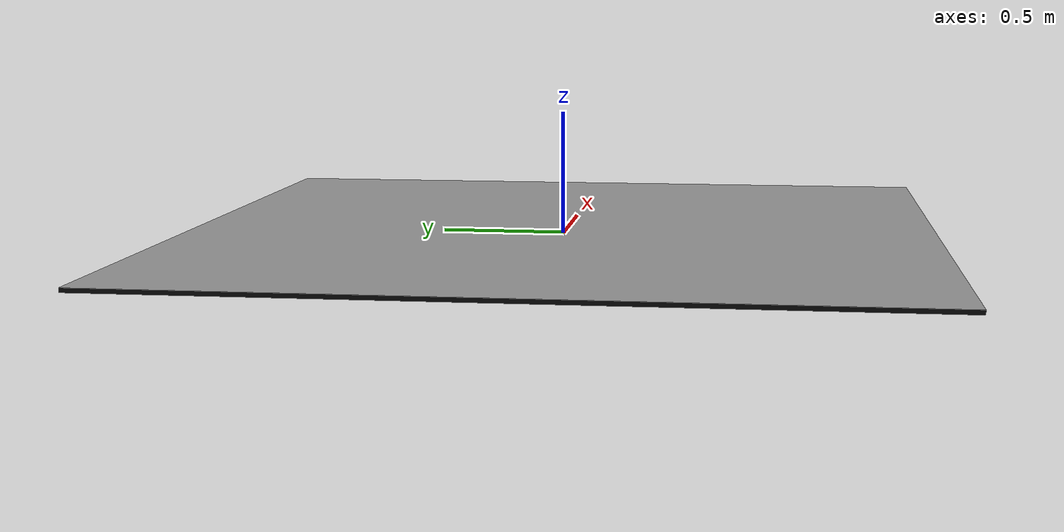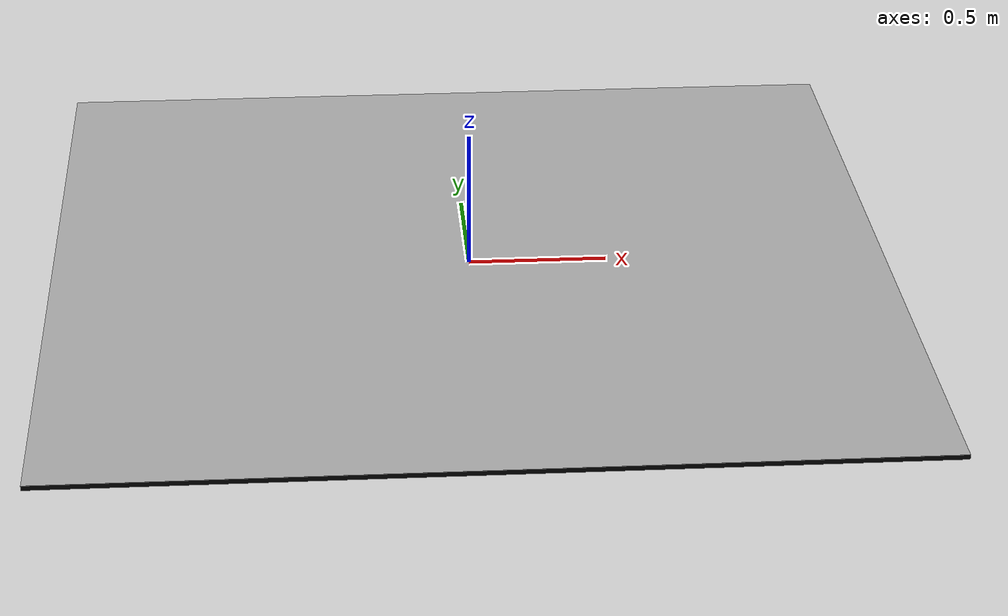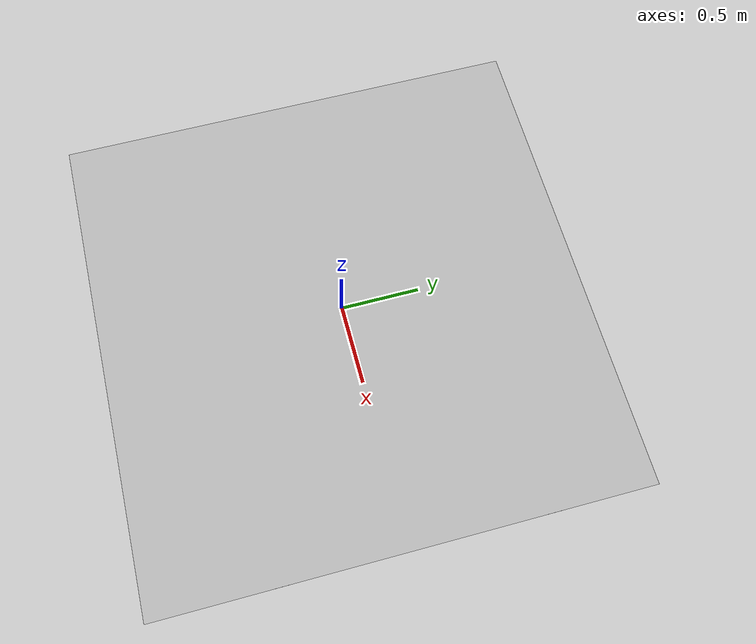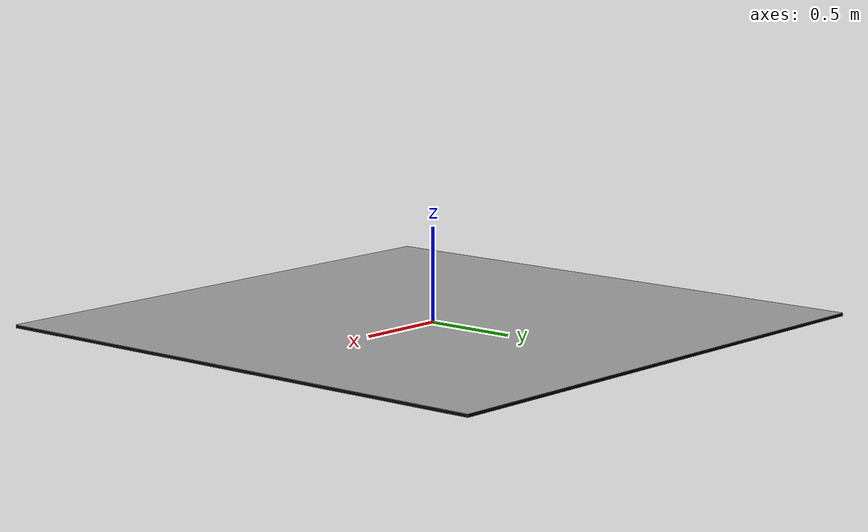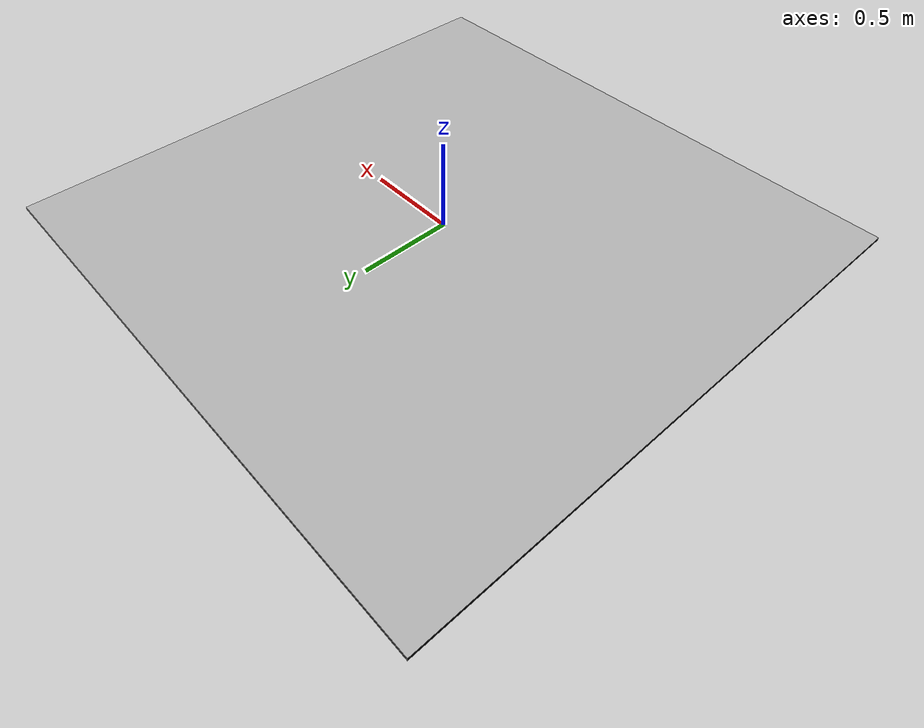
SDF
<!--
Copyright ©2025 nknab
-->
<?xml version="1.0" ?>
<sdf version="1.5">

	<model name="race_track">
		<static>true</static>
		<pose>0 0 0.01 0 0 0</pose>
		<link name="race_track_floor">
			<collision name="race_track_floor_collision">
				<geometry>
					<box>
						<size>3.04 3.04 0.017</size>
					</box>
				</geometry>
			</collision>
			<visual name="race_track_floor_visual">
				<geometry>
					<box>
						<size>3.04 3.04 0.017</size>
					</box>
				</geometry>
				<material>
					<ambient>0 0 0 1</ambient>
					<diffuse>0 0 0 1</diffuse>
				</material>
			</visual>
		</link>
		<link name="race_track_surface">
			<pose relative_to="race_track_floor">0 0 0.009 0 0 0</pose>
			<collision name="race_track_surface_collision">
				<geometry>
					<box>
						<size>3.04 3.04 0.003</size>
					</box>
				</geometry>
				<surface>
					<friction>
						<ode>
							<mu>0.5</mu>
							<mu2>0.4</mu2>
						</ode>
					</friction>
				</surface>
			</collision>
			<visual name="race_track_surface_visual">
				<cast_shadows>false</cast_shadows>
				<geometry>
					<mesh>
						<uri>model://models/race_track/meshes/mat.dae</uri>
					</mesh>
				</geometry>
			</visual>
		</link>
	</model>

</sdf>
